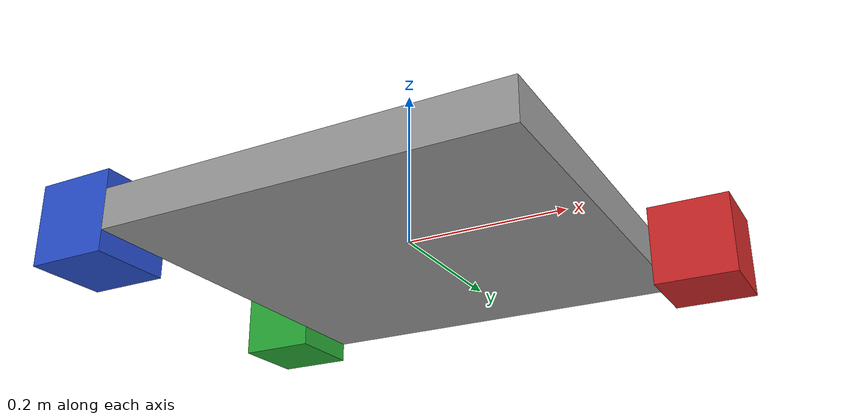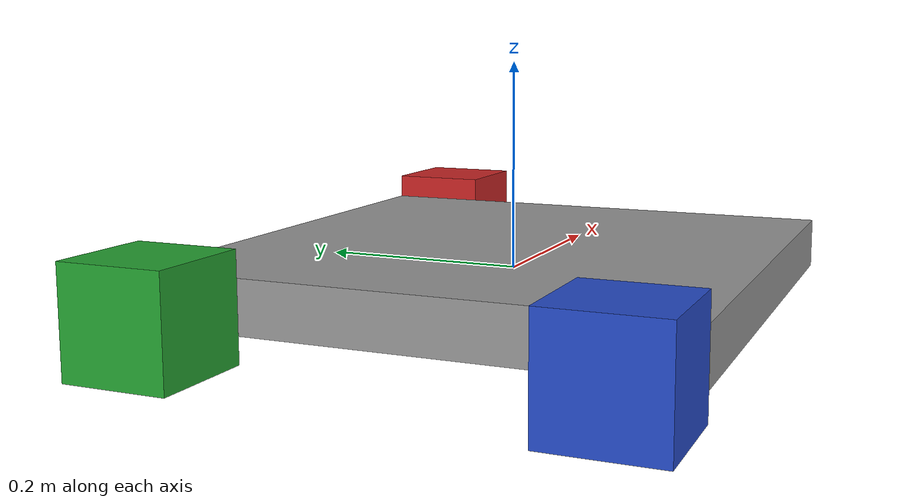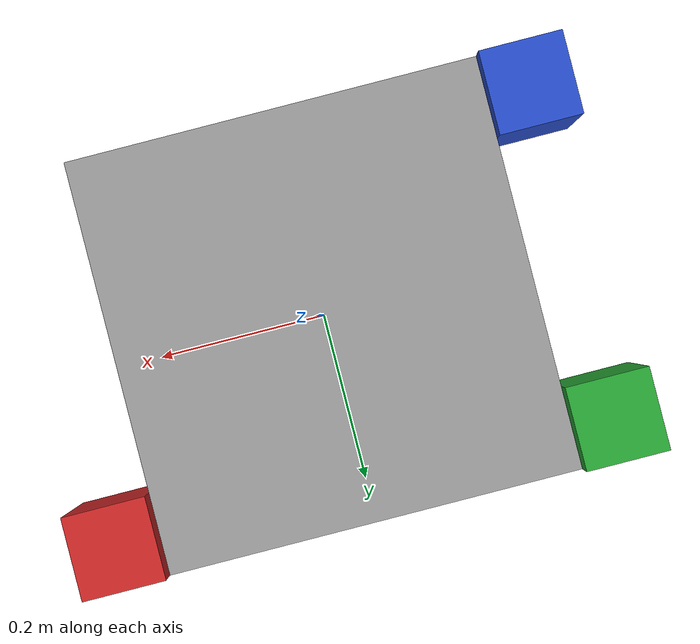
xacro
<?xml version="1.0"?>
<robot xmlns:xacro="http://ros.org/wiki/xacro" name="swerve_chassis">
  <!-- 定义一些常量 -->
  <xacro:property name="base_size" value="0.5"/>
  <xacro:property name="wheel_box_size" value="0.1"/>
  <xacro:property name="wheel_cylinder_radius" value="0.04"/>
  <xacro:property name="wheel_cylinder_length" value="0.02"/>
  <xacro:property name="steer_joint_limit" value="1.57"/>

  <!-- 基础链接 -->
  <link name="base_link">
    <visual>
      <geometry>
        <box size="${base_size} ${base_size} 0.05"/>
      </geometry>
      <material name="gray"/>
    </visual>
  </link>

  <!-- 虚拟steering部件 -->
  <!-- 前驱转向 -->
  <link name="steer_front_link">
    <visual>
      <geometry>
        <box size="${wheel_box_size} ${wheel_box_size} ${wheel_box_size}"/>
      </geometry>
      <material name="red"/>
    </visual>
  </link>
  <joint name="steer_front_joint" type="revolute">
    <parent link="base_link"/>
    <child link="steer_front_link"/>
    <!-- 此处原点位置请根据实际机器人布局进行调整 -->
    <origin xyz="0.3 0.2 0" rpy="0 0 0"/>
    <axis xyz="0 0 1"/>
    <limit lower="-${steer_joint_limit}" upper="${steer_joint_limit}" effort="10" velocity="1"/>
  </joint>

  <!-- 左后转向 -->
  <link name="steer_left_rear_link">
    <visual>
      <geometry>
        <box size="${wheel_box_size} ${wheel_box_size} ${wheel_box_size}"/>
      </geometry>
      <material name="green"/>
    </visual>
  </link>
  <joint name="steer_left_rear_joint" type="revolute">
    <parent link="base_link"/>
    <child link="steer_left_rear_link"/>
    <origin xyz="-0.3 0.2 0" rpy="0 0 0"/>
    <axis xyz="0 0 1"/>
    <limit lower="-${steer_joint_limit}" upper="${steer_joint_limit}" effort="10" velocity="1"/>
  </joint>

  <!-- 右后转向 -->
  <link name="steer_right_rear_link">
    <visual>
      <geometry>
        <box size="${wheel_box_size} ${wheel_box_size} ${wheel_box_size}"/>
      </geometry>
      <material name="blue"/>
    </visual>
  </link>
  <joint name="steer_right_rear_joint" type="revolute">
    <parent link="base_link"/>
    <child link="steer_right_rear_link"/>
    <origin xyz="-0.3 -0.2 0" rpy="0 0 0"/>
    <axis xyz="0 0 1"/>
    <limit lower="-${steer_joint_limit}" upper="${steer_joint_limit}" effort="10" velocity="1"/>
  </joint>

  <!-- 虚拟驱动部件 -->
  <!-- 前驱轮驱动 -->
  <link name="drive_front_link">
    <visual>
      <geometry>
        <cylinder radius="${wheel_cylinder_radius}" length="${wheel_cylinder_length}"/>
      </geometry>
      <material name="red"/>
    </visual>
  </link>
  <!-- 这里采用continuous关节，表示轮子可一直旋转 -->
  <joint name="drive_front_joint" type="continuous">
    <parent link="steer_front_link"/>
    <child link="drive_front_link"/>
    <origin xyz="0 0 0" rpy="0 0 0"/>
    <axis xyz="0 1 0"/>
  </joint>

  <!-- 左后轮驱动 -->
  <link name="drive_left_rear_link">
    <visual>
      <geometry>
        <cylinder radius="${wheel_cylinder_radius}" length="${wheel_cylinder_length}"/>
      </geometry>
      <material name="green"/>
    </visual>
  </link>
  <joint name="drive_left_rear_joint" type="continuous">
    <parent link="steer_left_rear_link"/>
    <child link="drive_left_rear_link"/>
    <origin xyz="0 0 0" rpy="0 0 0"/>
    <axis xyz="0 1 0"/>
  </joint>

  <!-- 右后轮驱动 -->
  <link name="drive_right_rear_link">
    <visual>
      <geometry>
        <cylinder radius="${wheel_cylinder_radius}" length="${wheel_cylinder_length}"/>
      </geometry>
      <material name="blue"/>
    </visual>
  </link>
  <joint name="drive_right_rear_joint" type="continuous">
    <parent link="steer_right_rear_link"/>
    <child link="drive_right_rear_link"/>
    <origin xyz="0 0 0" rpy="0 0 0"/>
    <axis xyz="0 1 0"/>
  </joint>
</robot>
